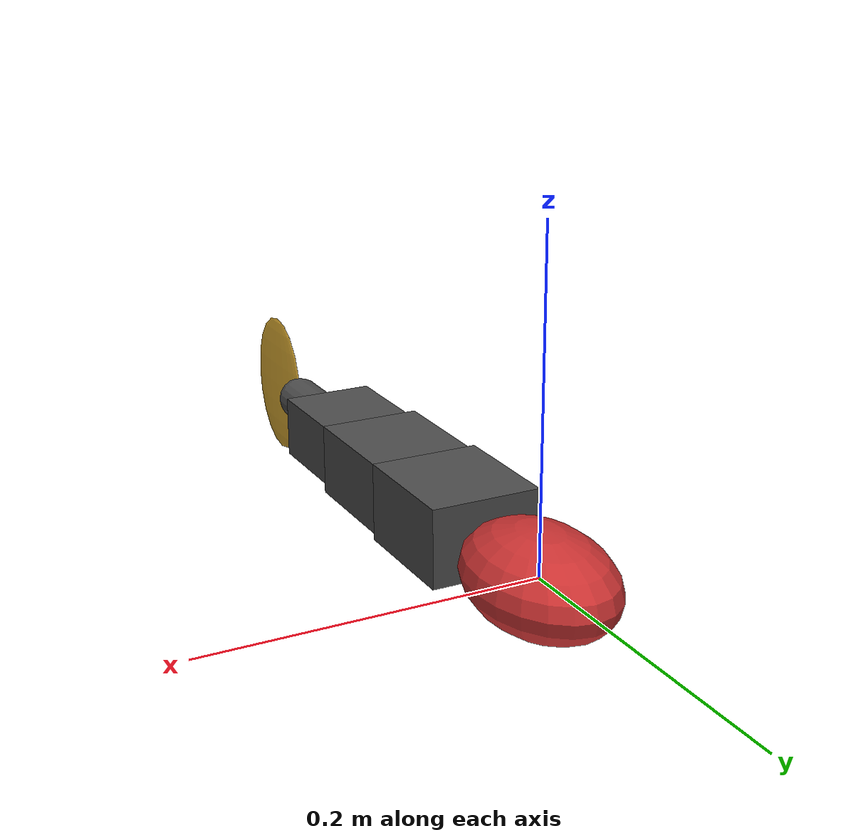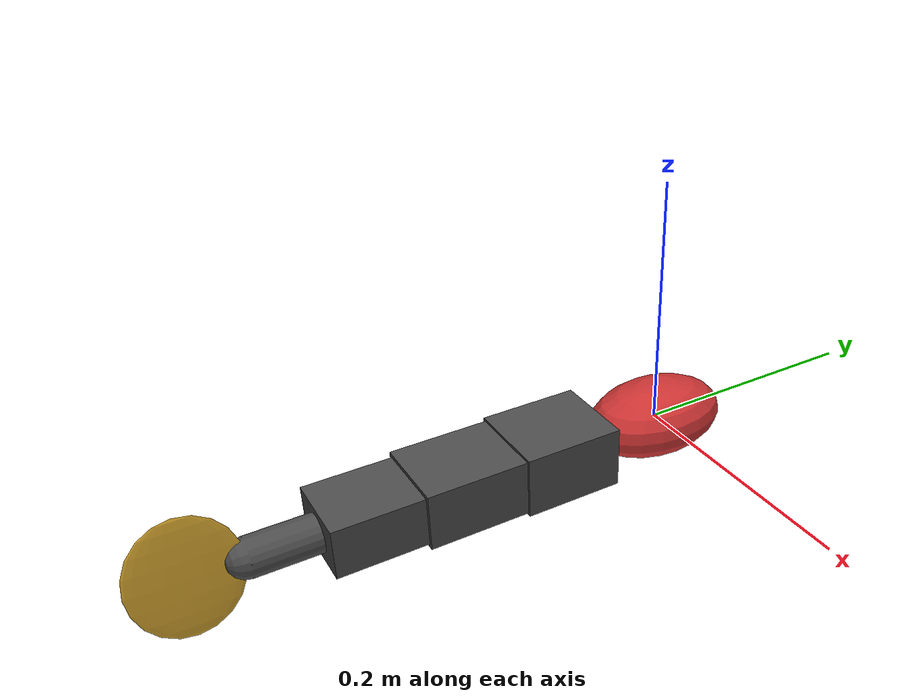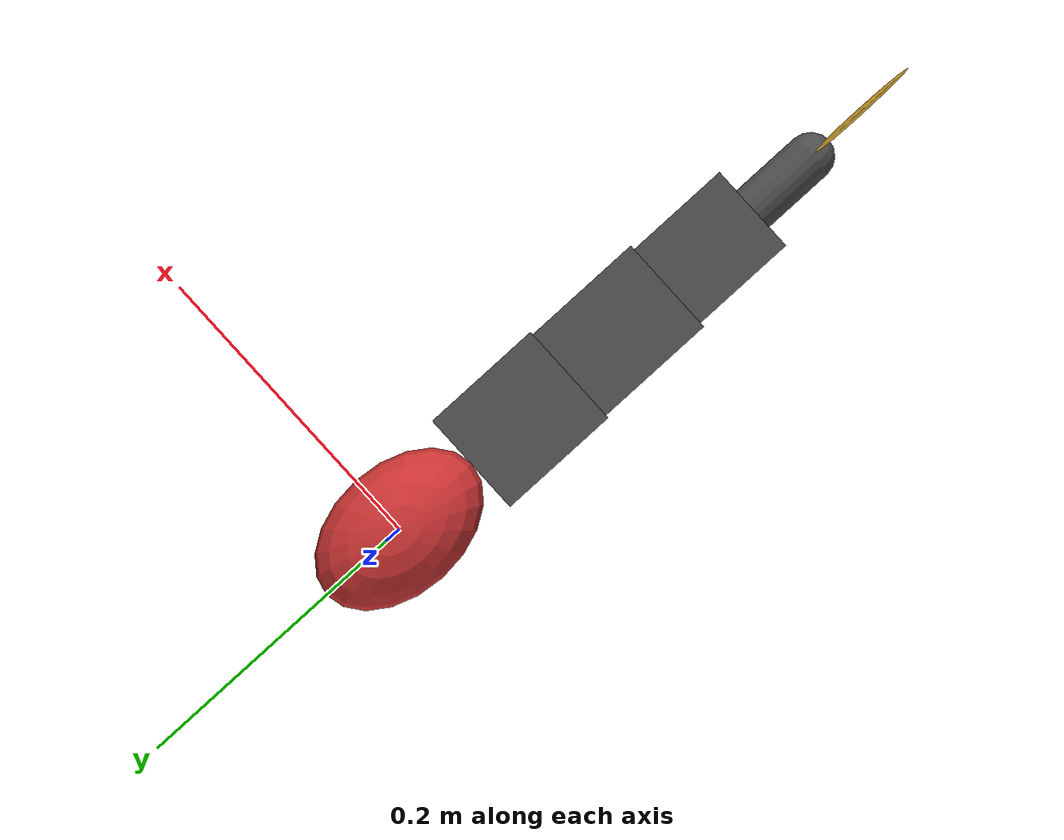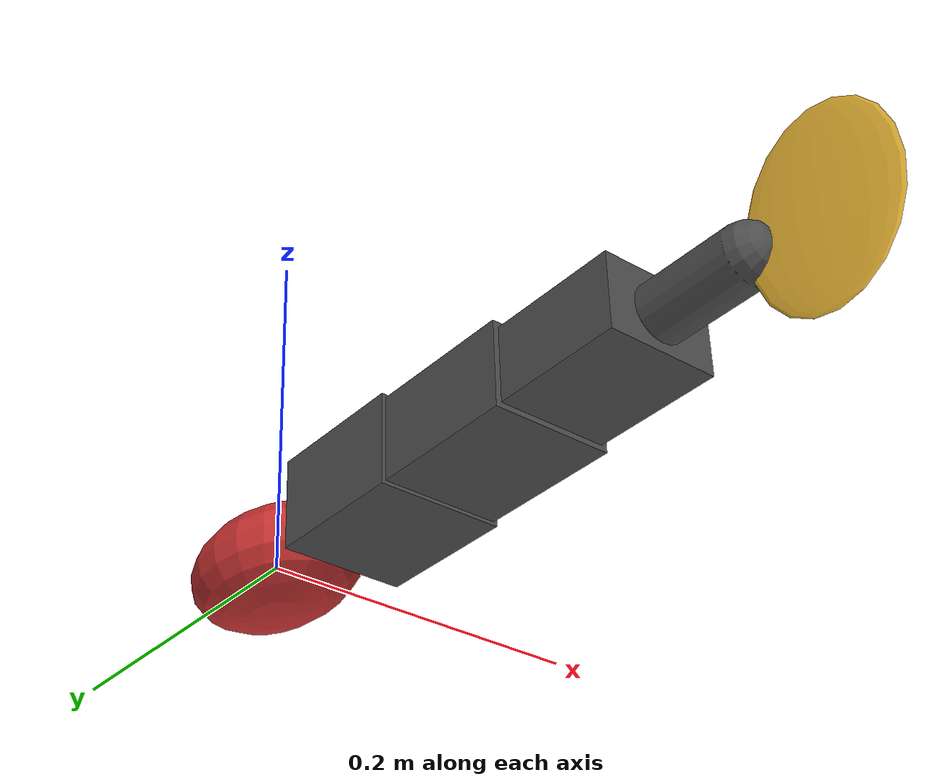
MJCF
<mujoco model="SerialFish3D">

    <compiler angle="degree" inertiafromgeom="true"/>
    <option timestep="0.01" gravity="0 0 0" integrator="RK4"/>

    <default>
        <joint damping="0.1" stiffness="0" armature="0.01"/>
        <motor ctrlrange="-1 1" ctrllimited="true"/>
        <geom solref="0.001 1" solimp="0.9 0.95 0.001"/>
    </default>

    <asset>
        <material name="head_mat" rgba="0.8 0.2 0.2 1"/>       <!-- Red head. -->
        <material name="body_mat" rgba="0.3 0.3 0.3 1"/>       <!-- Dark gray body. -->
        <material name="tail_mat" rgba="0.9 0.7 0.2 1"/>       <!-- Golden tail fin. -->
    </asset>

    <worldbody>
        <!-- Root head with a free joint. -->
        <body name="head" pos="0 0 0">
            <freejoint name="root_joint"/>

            <!-- Streamlined ellipsoid head shell. -->
            <geom name="head_shell" type="ellipsoid"
                  size="0.04 0.06 0.03"
                  pos="0 0 0"
                  material="head_mat"
                  density="1500"/>

            <!-- Body segment 1. -->
            <!-- Rear of head at y=-0.06. -->
            <body name="body_seg1" pos="0 -0.06 0">
                <!-- Pitch around x for vertical motion. -->
                <!-- Negative x makes positive values pitch upward. -->
                <joint name="seg1_pitch" type="hinge" axis="-1 0 0"
                       limited="true" range="-25 25"/>
                <!-- Yaw around z for lateral motion. -->
                <joint name="seg1_yaw" type="hinge" axis="0 0 1"
                       limited="true" range="-30 30"/>

                <!-- box half-size Y=0.04 -->
                <geom name="seg1_geom" type="box"
                      size="0.035 0.04 0.025"
                      pos="0 -0.04 0"
                      material="body_mat"
                      density="1200"/>

                <!-- Body segment 2. -->
                <!-- Segment 1 rear is y=-0.08 from the joint. -->
                <body name="body_seg2" pos="0 -0.08 0">
                    <joint name="seg2_yaw" type="hinge" axis="0 0 1"
                           limited="true" range="-30 30"/>

                    <geom name="seg2_geom" type="box"
                          size="0.033 0.04 0.023"
                          pos="0 -0.04 0"
                          material="body_mat"
                          density="1200"/>

                    <!-- Body segment 3. -->
                    <!-- Segment 2 rear is y=-0.08 from the joint. -->
                    <body name="body_seg3" pos="0 -0.08 0">
                        <joint name="seg3_yaw" type="hinge" axis="0 0 1"
                               limited="true" range="-35 35"/>

                        <geom name="seg3_geom" type="box"
                              size="0.030 0.035 0.020"
                              pos="0 -0.035 0"
                              material="body_mat"
                              density="1200"/>

                        <!-- Tail peduncle. -->
                        <!-- Segment 3 rear is y=-0.07 from the joint. -->
                        <body name="tail_peduncle" pos="0 -0.07 0">
                            <joint name="tail_yaw" type="hinge" axis="0 0 1"
                                   limited="true" range="-45 45"/>

                            <!-- Capsule peduncle extends behind the joint. -->
                            <geom name="peduncle_geom" type="capsule"
                                  fromto="0 0 0 0 -0.05 0"
                                  size="0.015"
                                  material="body_mat"
                                  density="1100"/>

                            <!-- Caudal fin. -->
                            <!-- Capsule rear is y=-0.05. -->
                            <body name="tail_fin" pos="0 -0.05 0">
                                <!-- Tail fin attached to the peduncle. -->
                                <geom name="tail_fin_geom" type="ellipsoid"
                                      size="0.002 0.04 0.05"
                                      pos="0 -0.04 0"
                                      material="tail_mat"
                                      density="800"/>
                            </body>
                        </body>
                    </body>
                </body>
            </body>
        </body>

        <light directional="true" diffuse="0.9 0.9 0.9" pos="0 0 3" dir="0 0 -1"/>
    </worldbody>

    <actuator>
        <!--
        Five controlled joints:
        - One pitch joint for vertical motion
        - Four yaw joints for lateral swimming
        -->
        <motor name="motor_pitch" joint="seg1_pitch" gear="0.5" ctrlrange="-1 1"/>
        <motor name="motor_seg1" joint="seg1_yaw" gear="0.5" ctrlrange="-1 1"/>
        <motor name="motor_seg2" joint="seg2_yaw" gear="0.4" ctrlrange="-1 1"/>
        <motor name="motor_seg3" joint="seg3_yaw" gear="0.3" ctrlrange="-1 1"/>
        <motor name="motor_tail" joint="tail_yaw" gear="0.2" ctrlrange="-1 1"/>
    </actuator>
</mujoco>
